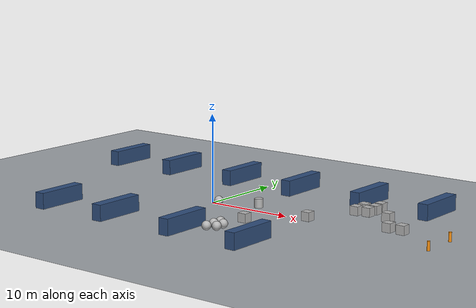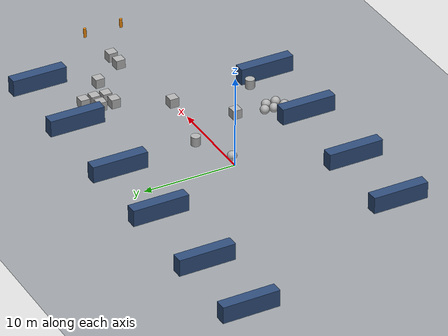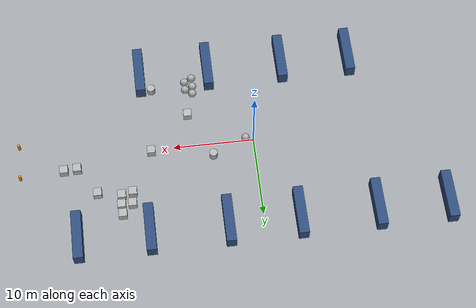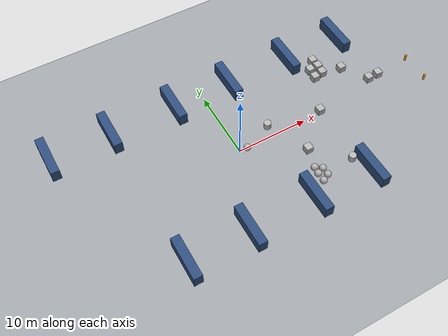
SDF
<sdf version="1.10">
 <world name="warehouse_5_rooms_agv_clearance">
  <model name="ground_plane">
   <static>true</static>
   <link name="link">
    <collision name="collision">
     <geometry><plane><normal>0 0 1</normal><size>100 70</size></plane></geometry>
     <surface><friction><ode><mu>50</mu><mu2>50</mu2></ode></friction></surface>
    </collision>
    <visual name="visual">
     <geometry><plane><normal>0 0 1</normal><size>100 70</size></plane></geometry>
     <material>
      <ambient>0.579999983 0.600000024 0.620000005 1</ambient>
      <diffuse>0.620000005 0.639999986 0.660000026 1</diffuse>
     </material>
    </visual>
    <inertial>
     <mass>1</mass>
     <inertia><ixx>1</ixx><ixy>0</ixy><ixz>0</ixz><iyy>1</iyy><iyz>0</iyz><izz>1</izz></inertia>
    </inertial>
   </link>
  </model>
  <model name="warehouse_racks">
   <static>true</static>
   <link name="racks_link">
    <collision name="room_1_rack_left_collision">
     <pose>-22.300000000000001 10.699999999999999 0.90000000000000002 0 0 0</pose>
     <geometry><box><size>1.2 6 1.8</size></box></geometry>
    </collision>
    <visual name="room_1_rack_left_visual">
     <pose>-22.300000000000001 10.699999999999999 0.90000000000000002 0 0 0</pose>
     <geometry><box><size>1.2 6 1.8</size></box></geometry>
     <material>
      <ambient>0.180000007 0.300000012 0.479999989 1</ambient>
      <diffuse>0.180000007 0.300000012 0.479999989 1</diffuse>
     </material>
    </visual>
    <collision name="room_1_rack_right_collision">
     <pose>-13.699999999999999 10.699999999999999 0.90000000000000002 0 0 0</pose>
     <geometry><box><size>1.2 6 1.8</size></box></geometry>
    </collision>
    <visual name="room_1_rack_right_visual">
     <pose>-13.699999999999999 10.699999999999999 0.90000000000000002 0 0 0</pose>
     <geometry><box><size>1.2 6 1.8</size></box></geometry>
     <material>
      <ambient>0.180000007 0.300000012 0.479999989 1</ambient>
      <diffuse>0.180000007 0.300000012 0.479999989 1</diffuse>
     </material>
    </visual>
    <collision name="room_2_rack_left_collision">
     <pose>-4.2999999999999998 10.699999999999999 0.90000000000000002 0 0 0</pose>
     <geometry><box><size>1.2 6 1.8</size></box></geometry>
    </collision>
    <visual name="room_2_rack_left_visual">
     <pose>-4.2999999999999998 10.699999999999999 0.90000000000000002 0 0 0</pose>
     <geometry><box><size>1.2 6 1.8</size></box></geometry>
     <material>
      <ambient>0.180000007 0.300000012 0.479999989 1</ambient>
      <diffuse>0.180000007 0.300000012 0.479999989 1</diffuse>
     </material>
    </visual>
    <collision name="room_2_rack_right_collision">
     <pose>4.2999999999999998 10.699999999999999 0.90000000000000002 0 0 0</pose>
     <geometry><box><size>1.2 6 1.8</size></box></geometry>
    </collision>
    <visual name="room_2_rack_right_visual">
     <pose>4.2999999999999998 10.699999999999999 0.90000000000000002 0 0 0</pose>
     <geometry><box><size>1.2 6 1.8</size></box></geometry>
     <material>
      <ambient>0.180000007 0.300000012 0.479999989 1</ambient>
      <diffuse>0.180000007 0.300000012 0.479999989 1</diffuse>
     </material>
    </visual>
    <collision name="room_3_rack_left_collision">
     <pose>13.699999999999999 10.699999999999999 0.90000000000000002 0 0 0</pose>
     <geometry><box><size>1.2 6 1.8</size></box></geometry>
    </collision>
    <visual name="room_3_rack_left_visual">
     <pose>13.699999999999999 10.699999999999999 0.90000000000000002 0 0 0</pose>
     <geometry><box><size>1.2 6 1.8</size></box></geometry>
     <material>
      <ambient>0.180000007 0.300000012 0.479999989 1</ambient>
      <diffuse>0.180000007 0.300000012 0.479999989 1</diffuse>
     </material>
    </visual>
    <collision name="room_3_rack_right_collision">
     <pose>22.300000000000001 10.699999999999999 0.90000000000000002 0 0 0</pose>
     <geometry><box><size>1.2 6 1.8</size></box></geometry>
    </collision>
    <visual name="room_3_rack_right_visual">
     <pose>22.300000000000001 10.699999999999999 0.90000000000000002 0 0 0</pose>
     <geometry><box><size>1.2 6 1.8</size></box></geometry>
     <material>
      <ambient>0.180000007 0.300000012 0.479999989 1</ambient>
      <diffuse>0.180000007 0.300000012 0.479999989 1</diffuse>
     </material>
    </visual>
    <collision name="room_4_rack_left_collision">
     <pose>-13.300000000000001 -10.699999999999999 0.90000000000000002 0 0 0</pose>
     <geometry><box><size>1.2 6 1.8</size></box></geometry>
    </collision>
    <visual name="room_4_rack_left_visual">
     <pose>-13.300000000000001 -10.699999999999999 0.90000000000000002 0 0 0</pose>
     <geometry><box><size>1.2 6 1.8</size></box></geometry>
     <material>
      <ambient>0.180000007 0.300000012 0.479999989 1</ambient>
      <diffuse>0.180000007 0.300000012 0.479999989 1</diffuse>
     </material>
    </visual>
    <collision name="room_4_rack_right_collision">
     <pose>-4.7000000000000002 -10.699999999999999 0.90000000000000002 0 0 0</pose>
     <geometry><box><size>1.2 6 1.8</size></box></geometry>
    </collision>
    <visual name="room_4_rack_right_visual">
     <pose>-4.7000000000000002 -10.699999999999999 0.90000000000000002 0 0 0</pose>
     <geometry><box><size>1.2 6 1.8</size></box></geometry>
     <material>
      <ambient>0.180000007 0.300000012 0.479999989 1</ambient>
      <diffuse>0.180000007 0.300000012 0.479999989 1</diffuse>
     </material>
    </visual>
    <collision name="room_5_rack_left_collision">
     <pose>4.7000000000000002 -10.699999999999999 0.90000000000000002 0 0 0</pose>
     <geometry><box><size>1.2 6 1.8</size></box></geometry>
    </collision>
    <visual name="room_5_rack_left_visual">
     <pose>4.7000000000000002 -10.699999999999999 0.90000000000000002 0 0 0</pose>
     <geometry><box><size>1.2 6 1.8</size></box></geometry>
     <material>
      <ambient>0.180000007 0.300000012 0.479999989 1</ambient>
      <diffuse>0.180000007 0.300000012 0.479999989 1</diffuse>
     </material>
    </visual>
    <collision name="room_5_rack_right_collision">
     <pose>13.300000000000001 -10.699999999999999 0.90000000000000002 0 0 0</pose>
     <geometry><box><size>1.2 6 1.8</size></box></geometry>
    </collision>
    <visual name="room_5_rack_right_visual">
     <pose>13.300000000000001 -10.699999999999999 0.90000000000000002 0 0 0</pose>
     <geometry><box><size>1.2 6 1.8</size></box></geometry>
     <material>
      <ambient>0.180000007 0.300000012 0.479999989 1</ambient>
      <diffuse>0.180000007 0.300000012 0.479999989 1</diffuse>
     </material>
    </visual>
    <inertial>
     <mass>1</mass>
     <inertia><ixx>1</ixx><ixy>0</ixy><ixz>0</ixz><iyy>1</iyy><iyz>0</iyz><izz>1</izz></inertia>
    </inertial>
   </link>
  </model>
  <model name="loading_bollards">
   <static>true</static>
   <link name="bollards_link">
    <collision name="bollard_1_collision">
     <pose>28.800000000000001 -2.1000000000000001 0.5 0 0 0</pose>
     <geometry><cylinder><radius>0.16</radius><length>1</length></cylinder></geometry>
    </collision>
    <visual name="bollard_1_visual">
     <pose>28.800000000000001 -2.1000000000000001 0.5 0 0 0</pose>
     <geometry><cylinder><radius>0.16</radius><length>1</length></cylinder></geometry>
     <material>
      <ambient>0.949999988 0.550000012 0.0500000007 1</ambient>
      <diffuse>0.949999988 0.550000012 0.0500000007 1</diffuse>
     </material>
    </visual>
    <collision name="bollard_2_collision">
     <pose>28.800000000000001 2.1000000000000001 0.5 0 0 0</pose>
     <geometry><cylinder><radius>0.16</radius><length>1</length></cylinder></geometry>
    </collision>
    <visual name="bollard_2_visual">
     <pose>28.800000000000001 2.1000000000000001 0.5 0 0 0</pose>
     <geometry><cylinder><radius>0.16</radius><length>1</length></cylinder></geometry>
     <material>
      <ambient>0.949999988 0.550000012 0.0500000007 1</ambient>
      <diffuse>0.949999988 0.550000012 0.0500000007 1</diffuse>
     </material>
    </visual>
    <inertial>
     <mass>1</mass>
     <inertia><ixx>1</ixx><ixy>0</ixy><ixz>0</ixz><iyy>1</iyy><iyz>0</iyz><izz>1</izz></inertia>
    </inertial>
   </link>
  </model>
  <model name="box">
   <pose>12.703796473434327 0.27042463246170279 0.49999999990199806 6.2287739151293738e-22 9.3279666454713669e-22 -3.6315533669320137e-22</pose>
   <link name="box_link">
    <inertial>
     <inertia><ixx>0.16666</ixx><ixy>0</ixy><ixz>0</ixz><iyy>0.16666</iyy><iyz>0</iyz><izz>0.16666</izz></inertia>
     <mass>1</mass>
    </inertial>
    <collision name="box_collision"><geometry><box><size>1 1 1</size></box></geometry></collision>
    <visual name="box_visual">
     <geometry><box><size>1 1 1</size></box></geometry>
     <material>
      <ambient>0.300000012 0.300000012 0.300000012 1</ambient>
      <diffuse>0.699999988 0.699999988 0.699999988 1</diffuse>
      <specular>1 1 1 1</specular>
     </material>
    </visual>
   </link>
   <static>false</static>
  </model>
  <model name="cylinder">
   <pose>5.1555572709151782 1.6181569485575658 0.49999942638036005 -7.1591618758633523e-20 -5.9052102394631082e-20 -1.0292880492996949e-20</pose>
   <link name="cylinder_link">
    <inertial>
     <inertia>
      <ixx>0.14580000000000001</ixx>
      <ixy>0</ixy>
      <ixz>0</ixz>
      <iyy>0.14580000000000001</iyy>
      <iyz>0</iyz>
      <izz>0.125</izz>
     </inertia>
     <mass>1</mass>
    </inertial>
    <collision name="cylinder_collision">
     <geometry><cylinder><radius>0.5</radius><length>1</length></cylinder></geometry>
    </collision>
    <visual name="cylinder_visual">
     <geometry><cylinder><radius>0.5</radius><length>1</length></cylinder></geometry>
     <material>
      <ambient>0.300000012 0.300000012 0.300000012 1</ambient>
      <diffuse>0.699999988 0.699999988 0.699999988 1</diffuse>
      <specular>1 1 1 1</specular>
     </material>
    </visual>
   </link>
   <static>false</static>
  </model>
  <model name="sphere">
   <pose>0.98339832737877231 -0.19929354049143555 0.499999999902001 0 0 0</pose>
   <link name="sphere_link">
    <inertial>
     <inertia>
      <ixx>0.10000000000000001</ixx>
      <ixy>0</ixy>
      <ixz>0</ixz>
      <iyy>0.10000000000000001</iyy>
      <iyz>0</iyz>
      <izz>0.10000000000000001</izz>
     </inertia>
     <mass>1</mass>
    </inertial>
    <collision name="sphere_collision"><geometry><sphere><radius>0.5</radius></sphere></geometry></collision>
    <visual name="sphere_visual">
     <geometry><sphere><radius>0.5</radius></sphere></geometry>
     <material>
      <ambient>0.300000012 0.300000012 0.300000012 1</ambient>
      <diffuse>0.699999988 0.699999988 0.699999988 1</diffuse>
      <specular>1 1 1 1</specular>
     </material>
    </visual>
   </link>
   <static>false</static>
  </model>
  <model name="box_1">
   <pose>7.8000927805732232 -4.2858839129349047 0.49999999990199806 6.2287739151293738e-22 9.3279666454713669e-22 -3.6315533669320137e-22</pose>
   <link name="box_link">
    <inertial>
     <inertia><ixx>0.16666</ixx><ixy>0</ixy><ixz>0</ixz><iyy>0.16666</iyy><iyz>0</iyz><izz>0.16666</izz></inertia>
     <mass>1</mass>
    </inertial>
    <collision name="box_collision"><geometry><box><size>1 1 1</size></box></geometry></collision>
    <visual name="box_visual">
     <geometry><box><size>1 1 1</size></box></geometry>
     <material>
      <ambient>0.300000012 0.300000012 0.300000012 1</ambient>
      <diffuse>0.699999988 0.699999988 0.699999988 1</diffuse>
      <specular>1 1 1 1</specular>
     </material>
    </visual>
   </link>
   <static>false</static>
  </model>
  <model name="box_2">
   <pose>23.495159533749273 1.7213039497857006 0.49999999990199806 6.2287739151293738e-22 9.3279666454713669e-22 -3.6315533669320137e-22</pose>
   <link name="box_link">
    <inertial>
     <inertia><ixx>0.16666</ixx><ixy>0</ixy><ixz>0</ixz><iyy>0.16666</iyy><iyz>0</iyz><izz>0.16666</izz></inertia>
     <mass>1</mass>
    </inertial>
    <collision name="box_collision"><geometry><box><size>1 1 1</size></box></geometry></collision>
    <visual name="box_visual">
     <geometry><box><size>1 1 1</size></box></geometry>
     <material>
      <ambient>0.300000012 0.300000012 0.300000012 1</ambient>
      <diffuse>0.699999988 0.699999988 0.699999988 1</diffuse>
      <specular>1 1 1 1</specular>
     </material>
    </visual>
   </link>
   <static>false</static>
  </model>
  <model name="box_3">
   <pose>21.878598190167253 1.6641442695661235 0.49999999990199806 6.2287739151293738e-22 9.3279666454713669e-22 -3.6315533669320137e-22</pose>
   <link name="box_link">
    <inertial>
     <inertia><ixx>0.16666</ixx><ixy>0</ixy><ixz>0</ixz><iyy>0.16666</iyy><iyz>0</iyz><izz>0.16666</izz></inertia>
     <mass>1</mass>
    </inertial>
    <collision name="box_collision"><geometry><box><size>1 1 1</size></box></geometry></collision>
    <visual name="box_visual">
     <geometry><box><size>1 1 1</size></box></geometry>
     <material>
      <ambient>0.300000012 0.300000012 0.300000012 1</ambient>
      <diffuse>0.699999988 0.699999988 0.699999988 1</diffuse>
      <specular>1 1 1 1</specular>
     </material>
    </visual>
   </link>
   <static>false</static>
  </model>
  <model name="box_4">
   <pose>16.769362032246438 8.2629697221539775 0.49999999990199806 6.2287739151293738e-22 9.3279666454713669e-22 -3.6315533669320137e-22</pose>
   <link name="box_link">
    <inertial>
     <inertia><ixx>0.16666</ixx><ixy>0</ixy><ixz>0</ixz><iyy>0.16666</iyy><iyz>0</iyz><izz>0.16666</izz></inertia>
     <mass>1</mass>
    </inertial>
    <collision name="box_collision"><geometry><box><size>1 1 1</size></box></geometry></collision>
    <visual name="box_visual">
     <geometry><box><size>1 1 1</size></box></geometry>
     <material>
      <ambient>0.300000012 0.300000012 0.300000012 1</ambient>
      <diffuse>0.699999988 0.699999988 0.699999988 1</diffuse>
      <specular>1 1 1 1</specular>
     </material>
    </visual>
   </link>
   <static>false</static>
  </model>
  <model name="box_5">
   <pose>16.834026659084518 7.0218532336759818 0.49999999990199806 6.2287739151293738e-22 9.3279666454713669e-22 -3.6315533669320137e-22</pose>
   <link name="box_link">
    <inertial>
     <inertia><ixx>0.16666</ixx><ixy>0</ixy><ixz>0</ixz><iyy>0.16666</iyy><iyz>0</iyz><izz>0.16666</izz></inertia>
     <mass>1</mass>
    </inertial>
    <collision name="box_collision"><geometry><box><size>1 1 1</size></box></geometry></collision>
    <visual name="box_visual">
     <geometry><box><size>1 1 1</size></box></geometry>
     <material>
      <ambient>0.300000012 0.300000012 0.300000012 1</ambient>
      <diffuse>0.699999988 0.699999988 0.699999988 1</diffuse>
      <specular>1 1 1 1</specular>
     </material>
    </visual>
   </link>
   <static>false</static>
  </model>
  <model name="box_6">
   <pose>16.721132894652669 5.7751653223941117 0.49999999990199806 6.2287739151293738e-22 9.3279666454713669e-22 -3.6315533669320137e-22</pose>
   <link name="box_link">
    <inertial>
     <inertia><ixx>0.16666</ixx><ixy>0</ixy><ixz>0</ixz><iyy>0.16666</iyy><iyz>0</iyz><izz>0.16666</izz></inertia>
     <mass>1</mass>
    </inertial>
    <collision name="box_collision"><geometry><box><size>1 1 1</size></box></geometry></collision>
    <visual name="box_visual">
     <geometry><box><size>1 1 1</size></box></geometry>
     <material>
      <ambient>0.300000012 0.300000012 0.300000012 1</ambient>
      <diffuse>0.699999988 0.699999988 0.699999988 1</diffuse>
      <specular>1 1 1 1</specular>
     </material>
    </visual>
   </link>
   <static>false</static>
  </model>
  <model name="box_7">
   <pose>15.504002906234884 6.988056307873312 0.49999999990199806 6.2287739151293738e-22 9.3279666454713669e-22 -3.6315533669320137e-22</pose>
   <link name="box_link">
    <inertial>
     <inertia><ixx>0.16666</ixx><ixy>0</ixy><ixz>0</ixz><iyy>0.16666</iyy><iyz>0</iyz><izz>0.16666</izz></inertia>
     <mass>1</mass>
    </inertial>
    <collision name="box_collision"><geometry><box><size>1 1 1</size></box></geometry></collision>
    <visual name="box_visual">
     <geometry><box><size>1 1 1</size></box></geometry>
     <material>
      <ambient>0.300000012 0.300000012 0.300000012 1</ambient>
      <diffuse>0.699999988 0.699999988 0.699999988 1</diffuse>
      <specular>1 1 1 1</specular>
     </material>
    </visual>
   </link>
   <static>false</static>
  </model>
  <model name="box_8">
   <pose>15.376819039511666 5.5067811647085971 0.49999999990199806 6.2287739151293738e-22 9.3279666454713669e-22 -3.6315533669320137e-22</pose>
   <link name="box_link">
    <inertial>
     <inertia><ixx>0.16666</ixx><ixy>0</ixy><ixz>0</ixz><iyy>0.16666</iyy><iyz>0</iyz><izz>0.16666</izz></inertia>
     <mass>1</mass>
    </inertial>
    <collision name="box_collision"><geometry><box><size>1 1 1</size></box></geometry></collision>
    <visual name="box_visual">
     <geometry><box><size>1 1 1</size></box></geometry>
     <material>
      <ambient>0.300000012 0.300000012 0.300000012 1</ambient>
      <diffuse>0.699999988 0.699999988 0.699999988 1</diffuse>
      <specular>1 1 1 1</specular>
     </material>
    </visual>
   </link>
   <static>false</static>
  </model>
  <model name="box_9">
   <pose>19.597804085040725 5.1799716650985212 0.49999999990199806 6.2287739151293738e-22 9.3279666454713669e-22 -3.6315533669320137e-22</pose>
   <link name="box_link">
    <inertial>
     <inertia><ixx>0.16666</ixx><ixy>0</ixy><ixz>0</ixz><iyy>0.16666</iyy><iyz>0</iyz><izz>0.16666</izz></inertia>
     <mass>1</mass>
    </inertial>
    <collision name="box_collision"><geometry><box><size>1 1 1</size></box></geometry></collision>
    <visual name="box_visual">
     <geometry><box><size>1 1 1</size></box></geometry>
     <material>
      <ambient>0.300000012 0.300000012 0.300000012 1</ambient>
      <diffuse>0.699999988 0.699999988 0.699999988 1</diffuse>
      <specular>1 1 1 1</specular>
     </material>
    </visual>
   </link>
   <static>false</static>
  </model>
  <model name="sphere_0">
   <pose>6.8903202246989981 -7.1623792371815256 0.499999999902001 0 0 0</pose>
   <link name="sphere_link">
    <inertial>
     <inertia>
      <ixx>0.10000000000000001</ixx>
      <ixy>0</ixy>
      <ixz>0</ixz>
      <iyy>0.10000000000000001</iyy>
      <iyz>0</iyz>
      <izz>0.10000000000000001</izz>
     </inertia>
     <mass>1</mass>
    </inertial>
    <collision name="sphere_collision"><geometry><sphere><radius>0.5</radius></sphere></geometry></collision>
    <visual name="sphere_visual">
     <geometry><sphere><radius>0.5</radius></sphere></geometry>
     <material>
      <ambient>0.300000012 0.300000012 0.300000012 1</ambient>
      <diffuse>0.699999988 0.699999988 0.699999988 1</diffuse>
      <specular>1 1 1 1</specular>
     </material>
    </visual>
   </link>
   <static>false</static>
  </model>
  <model name="sphere_1">
   <pose>6.7842327850763819 -8.1632545753905994 0.499999999902001 0 0 0</pose>
   <link name="sphere_link">
    <inertial>
     <inertia>
      <ixx>0.10000000000000001</ixx>
      <ixy>0</ixy>
      <ixz>0</ixz>
      <iyy>0.10000000000000001</iyy>
      <iyz>0</iyz>
      <izz>0.10000000000000001</izz>
     </inertia>
     <mass>1</mass>
    </inertial>
    <collision name="sphere_collision"><geometry><sphere><radius>0.5</radius></sphere></geometry></collision>
    <visual name="sphere_visual">
     <geometry><sphere><radius>0.5</radius></sphere></geometry>
     <material>
      <ambient>0.300000012 0.300000012 0.300000012 1</ambient>
      <diffuse>0.699999988 0.699999988 0.699999988 1</diffuse>
      <specular>1 1 1 1</specular>
     </material>
    </visual>
   </link>
   <static>false</static>
  </model>
  <model name="sphere_2">
   <pose>6.8056579492353055 -9.3730197957294834 0.499999999902001 0 0 0</pose>
   <link name="sphere_link">
    <inertial>
     <inertia>
      <ixx>0.10000000000000001</ixx>
      <ixy>0</ixy>
      <ixz>0</ixz>
      <iyy>0.10000000000000001</iyy>
      <iyz>0</iyz>
      <izz>0.10000000000000001</izz>
     </inertia>
     <mass>1</mass>
    </inertial>
    <collision name="sphere_collision"><geometry><sphere><radius>0.5</radius></sphere></geometry></collision>
    <visual name="sphere_visual">
     <geometry><sphere><radius>0.5</radius></sphere></geometry>
     <material>
      <ambient>0.300000012 0.300000012 0.300000012 1</ambient>
      <diffuse>0.699999988 0.699999988 0.699999988 1</diffuse>
      <specular>1 1 1 1</specular>
     </material>
    </visual>
   </link>
   <static>false</static>
  </model>
  <model name="sphere_3">
   <pose>7.7368579646691416 -7.7809451549905368 0.499999999902001 0 0 0</pose>
   <link name="sphere_link">
    <inertial>
     <inertia>
      <ixx>0.10000000000000001</ixx>
      <ixy>0</ixy>
      <ixz>0</ixz>
      <iyy>0.10000000000000001</iyy>
      <iyz>0</iyz>
      <izz>0.10000000000000001</izz>
     </inertia>
     <mass>1</mass>
    </inertial>
    <collision name="sphere_collision"><geometry><sphere><radius>0.5</radius></sphere></geometry></collision>
    <visual name="sphere_visual">
     <geometry><sphere><radius>0.5</radius></sphere></geometry>
     <material>
      <ambient>0.300000012 0.300000012 0.300000012 1</ambient>
      <diffuse>0.699999988 0.699999988 0.699999988 1</diffuse>
      <specular>1 1 1 1</specular>
     </material>
    </visual>
   </link>
   <static>false</static>
  </model>
  <model name="sphere_4">
   <pose>7.7556594555730332 -8.8766516102693505 0.499999999902001 0 0 0</pose>
   <link name="sphere_link">
    <inertial>
     <inertia>
      <ixx>0.10000000000000001</ixx>
      <ixy>0</ixy>
      <ixz>0</ixz>
      <iyy>0.10000000000000001</iyy>
      <iyz>0</iyz>
      <izz>0.10000000000000001</izz>
     </inertia>
     <mass>1</mass>
    </inertial>
    <collision name="sphere_collision"><geometry><sphere><radius>0.5</radius></sphere></geometry></collision>
    <visual name="sphere_visual">
     <geometry><sphere><radius>0.5</radius></sphere></geometry>
     <material>
      <ambient>0.300000012 0.300000012 0.300000012 1</ambient>
      <diffuse>0.699999988 0.699999988 0.699999988 1</diffuse>
      <specular>1 1 1 1</specular>
     </material>
    </visual>
   </link>
   <static>false</static>
  </model>
  <model name="cylinder_1">
   <pose>12.006718790022493 -8.281086487565906 0.49999942638036005 7.0196312714687674e-20 -1.3419670444586248e-19 -1.446106778248043e-20</pose>
   <link name="cylinder_link">
    <inertial>
     <inertia>
      <ixx>0.14580000000000001</ixx>
      <ixy>0</ixy>
      <ixz>0</ixz>
      <iyy>0.14580000000000001</iyy>
      <iyz>0</iyz>
      <izz>0.125</izz>
     </inertia>
     <mass>1</mass>
    </inertial>
    <collision name="cylinder_collision">
     <geometry><cylinder><radius>0.5</radius><length>1</length></cylinder></geometry>
    </collision>
    <visual name="cylinder_visual">
     <geometry><cylinder><radius>0.5</radius><length>1</length></cylinder></geometry>
     <material>
      <ambient>0.300000012 0.300000012 0.300000012 1</ambient>
      <diffuse>0.699999988 0.699999988 0.699999988 1</diffuse>
      <specular>1 1 1 1</specular>
     </material>
    </visual>
   </link>
   <static>false</static>
  </model>
 </world>
</sdf>
